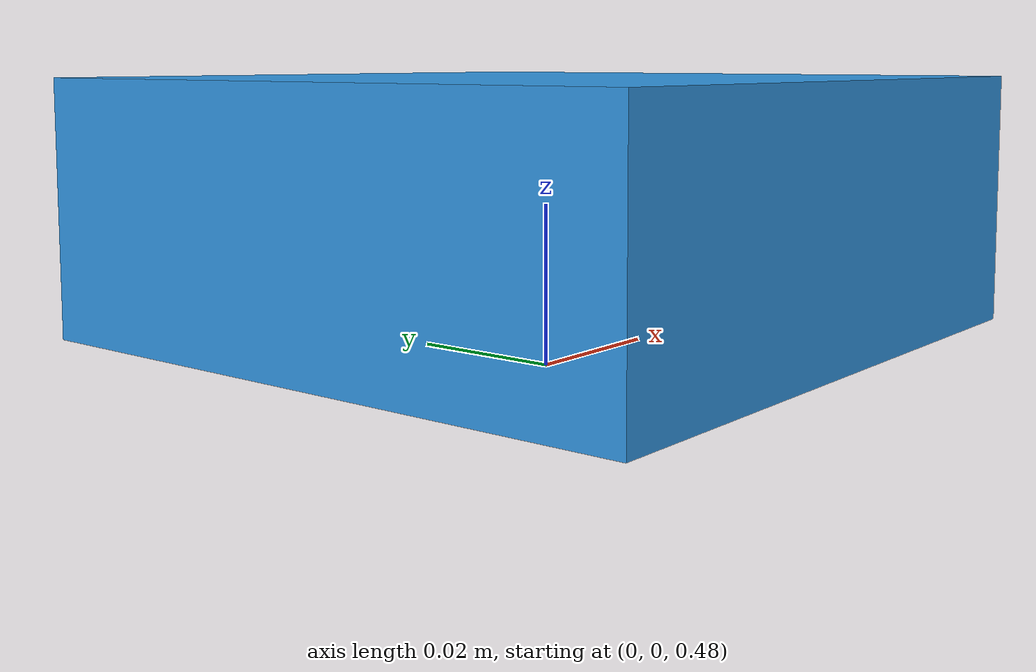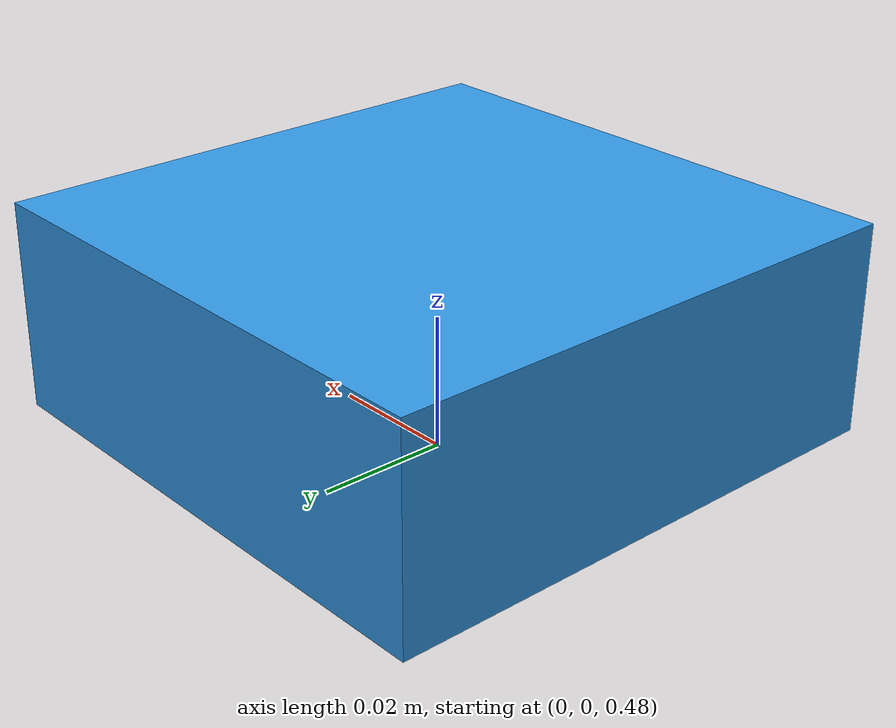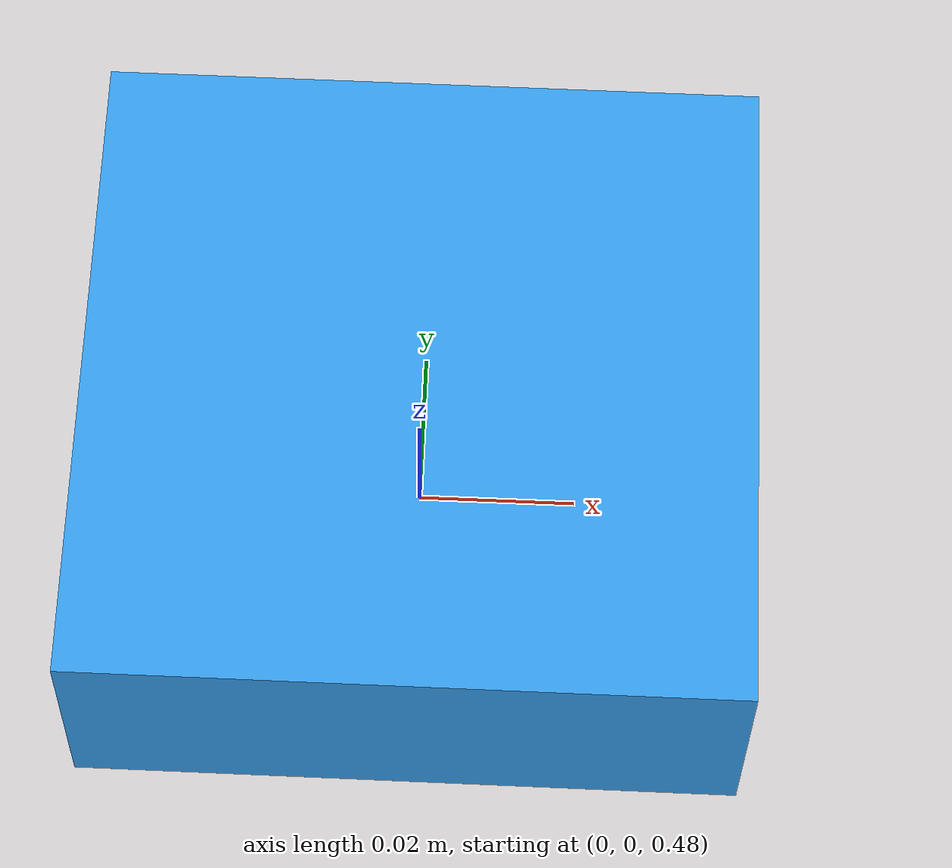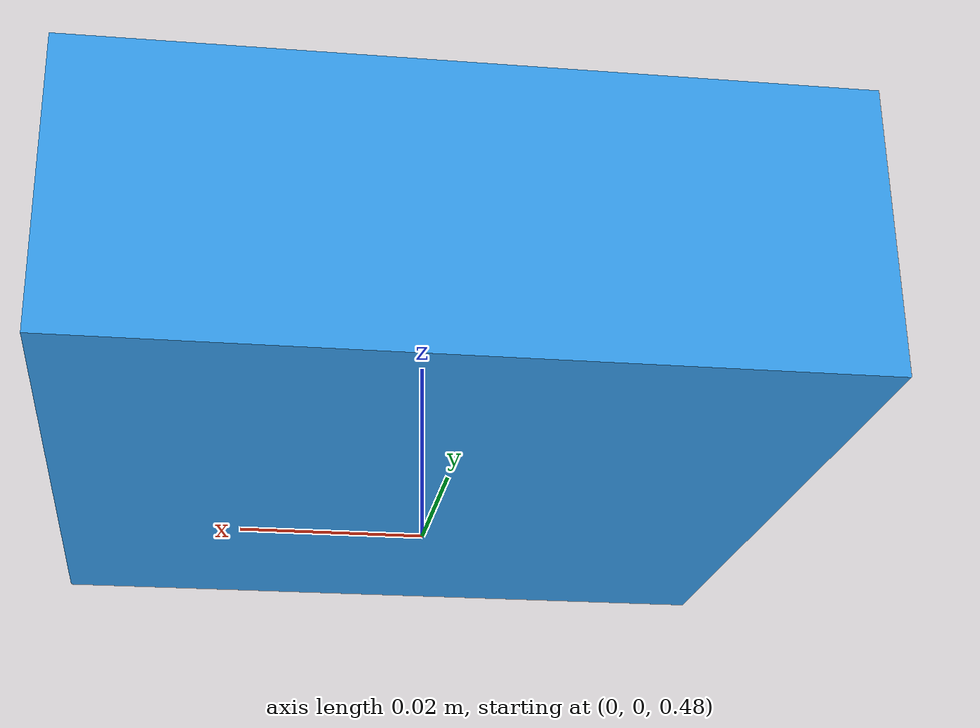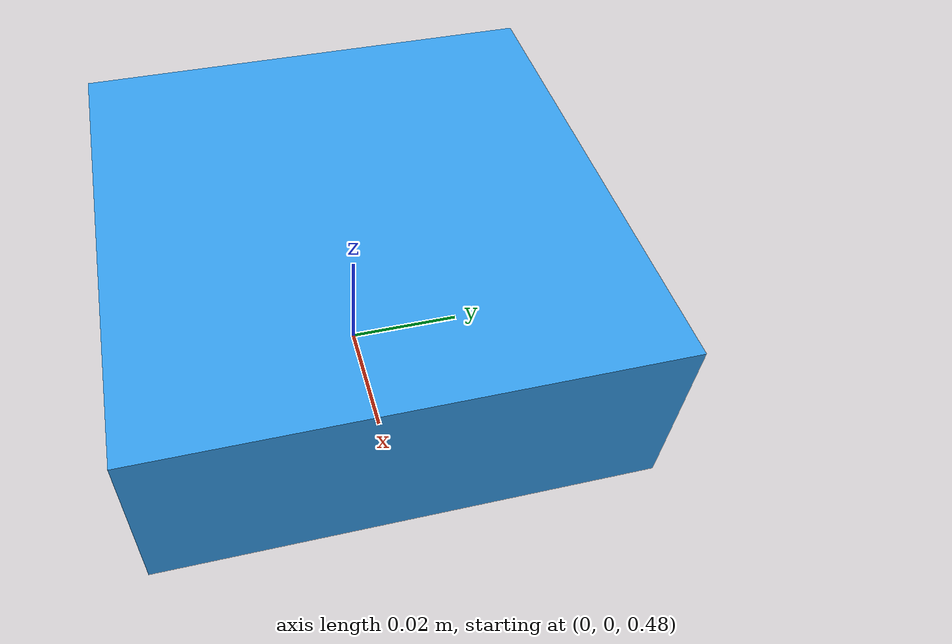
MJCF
<mujoco model="sils_smoke">
  <option timestep="0.0025" gravity="0 0 -9.81" integrator="RK4"/>

  <worldbody>
    <!-- Ground plane / 地面 -->
    <geom name="ground" type="plane" size="2 2 0.1" rgba="0.4 0.4 0.4 1"/>

    <!-- StampFly-sized body: 81.5 x 81.5 x 31 mm, ~36 g -->
    <!-- StampFly 大の機体: 81.5 x 81.5 x 31 mm、約 36 g -->
    <body name="drone" pos="0 0 0.5">
      <freejoint name="root"/>
      <geom name="body" type="box" size="0.0408 0.0408 0.0155" mass="0.036"
            rgba="0.2 0.6 0.9 1"/>
    </body>
  </worldbody>
</mujoco>
